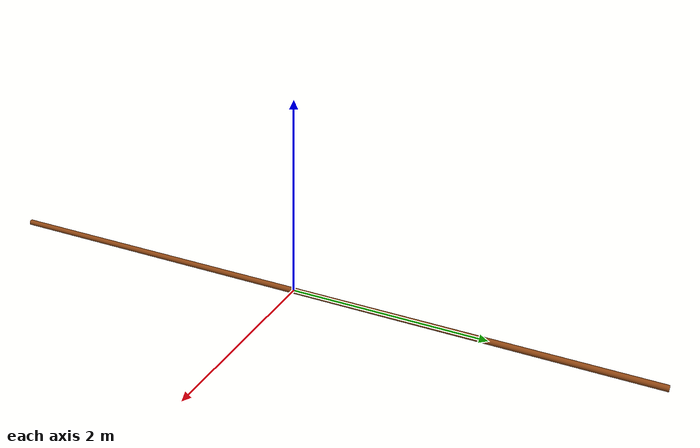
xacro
<?xml version="1.0"?>
<robot xmlns:xacro="http://www.ros.org/wiki/xacro" name="cylinder">

    <xacro:property name="sqrt2" value="1.41421356237" />
    <xacro:arg name="base_path" default="./"/>
    <xacro:arg name="cylinder_radius" default="0.03"/>
    <xacro:property name="radius" value="$(arg cylinder_radius)"/>
    <xacro:property name="length" value="${5 * sqrt2}" />
    <xacro:property name="m" value="1" />

    <xacro:arg name="full_visuals" default="true"/>

    <!-- Wrap the entire robot definition in a macro -->
    <xacro:macro name="cylinder" params="xyz rpy">
        <link name="world"/>

        <link name="base">
            <visual>
                <origin xyz="0 0 0" rpy="1.57079633 0 0"/>
                <geometry>
                    <cylinder radius="${radius}" length="${length}"/>
                </geometry>
                <xacro:if value="$(arg full_visuals)">
                    <material name="cylinder_material">
                        <color rgba="0.545 0.271 0.075 1.0"/>
                        <texture filename="$(arg base_path)textures/tree_bark.jpg"/>
                    </material>
                </xacro:if>
            </visual>
            <collision>
                <origin xyz="0 0 0" rpy="1.57079633 0 0"/>
                <geometry>
                    <cylinder radius="${radius}" length="${length}"/>
                </geometry>
            </collision>
            <inertial>
                <origin xyz="0 0 0" rpy="0 0 0"/>
                <mass value="${m}" />
                <inertia ixx="${1.0/12.0 * m * (3 * radius*radius + length*length)}"
                        ixy="0.0" ixz="0.0"
                        iyy="${1.0/12.0 * m * (3 * radius*radius + length*length)}"
                        iyz="0.0"
                        izz="${1.0/2.0 * m * length*length}" />
            </inertial>
        </link>

        <joint name="base_joint" type="fixed">
            <parent link="world"/>
            <child link="base"/>
            <origin xyz="${xyz}" rpy="${rpy}"/>
        </joint>
    </xacro:macro>

    <xacro:cylinder xyz="0.0 0.0 0.0" rpy="0 0 0" />
</robot>
